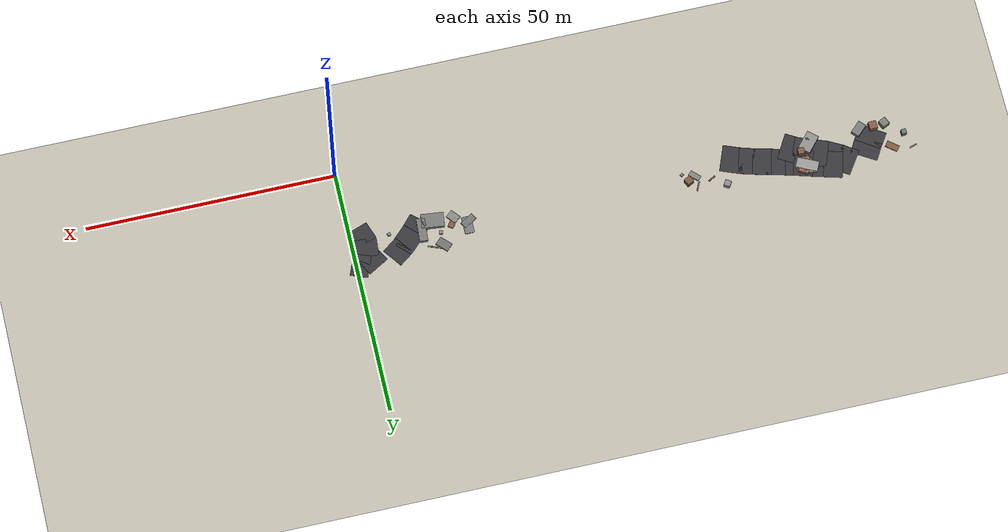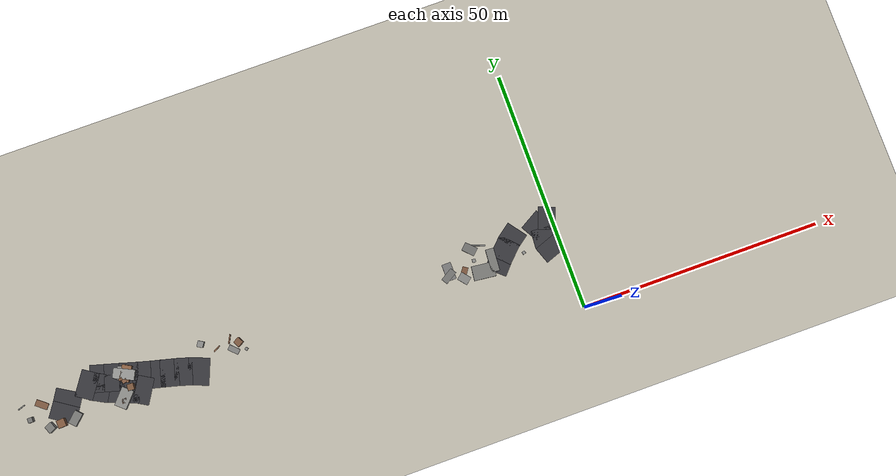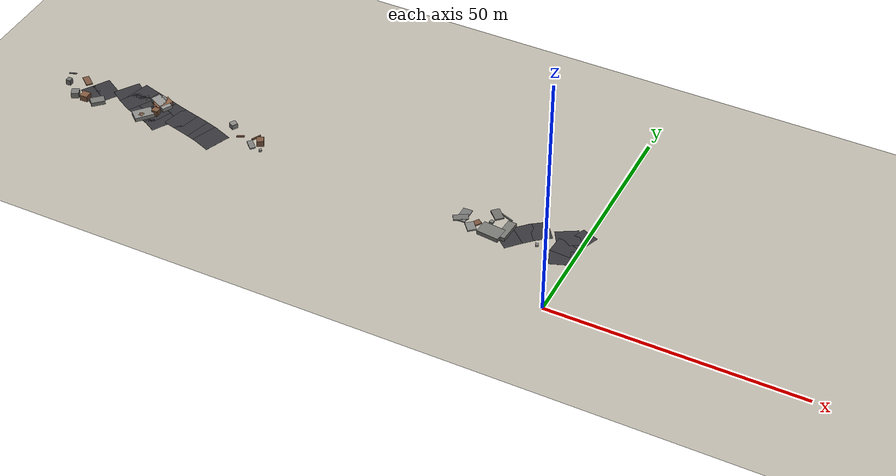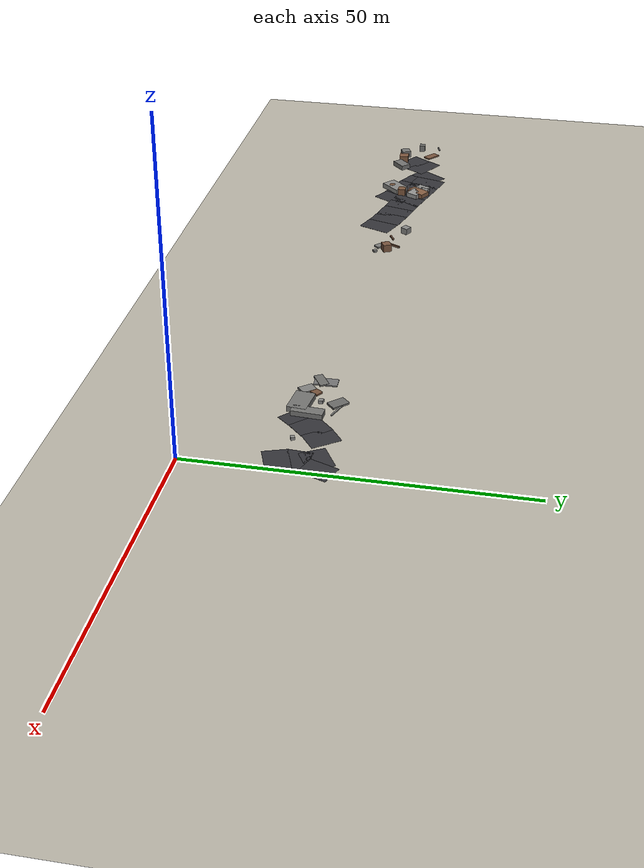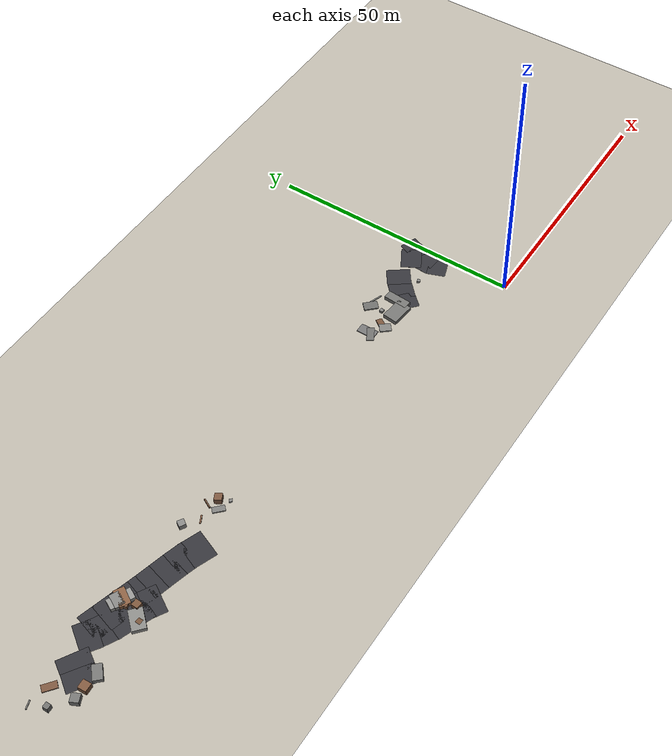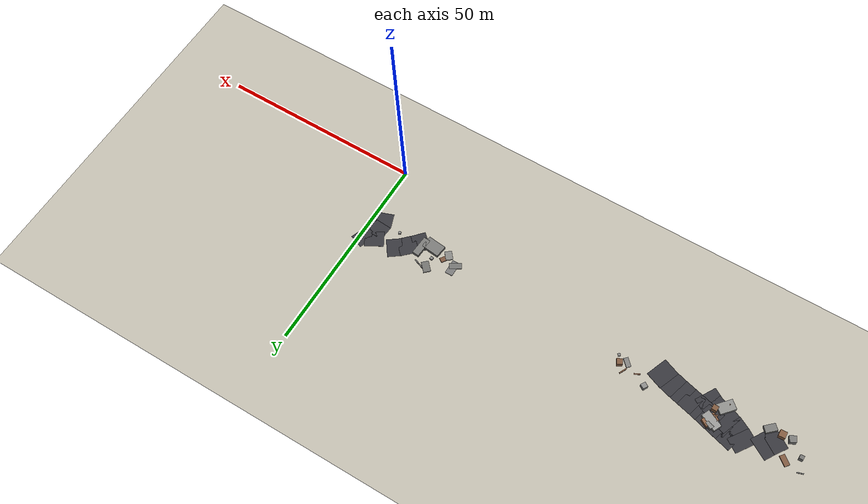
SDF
<sdf version="1.6">
 <world name="navitas_arena">
  <model name="ground_plane">
   <static>true</static>
   <link name="link">
    <collision name="collision">
     <geometry><plane><normal>0 0 1</normal><size>400 400</size></plane></geometry>
     <surface><friction><ode><mu>0.720</mu><mu2>0.720</mu2></ode></friction></surface>
    </collision>
    <visual name="visual">
     <cast_shadows>false</cast_shadows>
     <geometry><plane><normal>0 0 1</normal><size>400 400</size></plane></geometry>
     <material><ambient>0.720 0.700 0.650 1</ambient><diffuse>0.720 0.700 0.650 1</diffuse></material>
    </visual>
   </link>
  </model>
  <model name="road_kolay_1_17">
   <static>true</static>
   <pose>-105.048 15.414 0.040 0 0 0.982</pose>
   <link name="link">
    <collision name="col"><geometry><box><size>3.521 5.520 0.020</size></box></geometry></collision>
    <visual name="vis">
     <geometry><box><size>3.521 5.520 0.020</size></box></geometry>
     <material><ambient>0.20 0.20 0.22 1</ambient><diffuse>0.20 0.20 0.22 1</diffuse></material>
    </visual>
   </link>
  </model>
  <model name="road_kolay_1_18">
   <static>true</static>
   <pose>-103.608 17.687 0.040 0 0 1.029</pose>
   <link name="link">
    <collision name="col"><geometry><box><size>3.662 5.520 0.020</size></box></geometry></collision>
    <visual name="vis">
     <geometry><box><size>3.662 5.520 0.020</size></box></geometry>
     <material><ambient>0.20 0.20 0.22 1</ambient><diffuse>0.20 0.20 0.22 1</diffuse></material>
    </visual>
   </link>
  </model>
  <model name="road_kolay_2_13">
   <static>true</static>
   <pose>-88.765 14.302 0.040 0 0 2.616</pose>
   <link name="link">
    <collision name="col"><geometry><box><size>3.342 5.520 0.020</size></box></geometry></collision>
    <visual name="vis">
     <geometry><box><size>3.342 5.520 0.020</size></box></geometry>
     <material><ambient>0.20 0.20 0.22 1</ambient><diffuse>0.20 0.20 0.22 1</diffuse></material>
    </visual>
   </link>
  </model>
  <model name="road_kolay_2_14">
   <static>true</static>
   <pose>-91.242 15.455 0.040 0 0 2.778</pose>
   <link name="link">
    <collision name="col"><geometry><box><size>3.939 5.520 0.020</size></box></geometry></collision>
    <visual name="vis">
     <geometry><box><size>3.939 5.520 0.020</size></box></geometry>
     <material><ambient>0.20 0.20 0.22 1</ambient><diffuse>0.20 0.20 0.22 1</diffuse></material>
    </visual>
   </link>
  </model>
  <model name="road_kolay_2_15">
   <static>true</static>
   <pose>-94.027 16.499 0.040 0 0 2.788</pose>
   <link name="link">
    <collision name="col"><geometry><box><size>3.811 5.520 0.020</size></box></geometry></collision>
    <visual name="vis">
     <geometry><box><size>3.811 5.520 0.020</size></box></geometry>
     <material><ambient>0.20 0.20 0.22 1</ambient><diffuse>0.20 0.20 0.22 1</diffuse></material>
    </visual>
   </link>
  </model>
  <model name="road_kolay_2_16">
   <static>true</static>
   <pose>-96.622 17.661 0.040 0 0 2.650</pose>
   <link name="link">
    <collision name="col"><geometry><box><size>3.689 5.520 0.020</size></box></geometry></collision>
    <visual name="vis">
     <geometry><box><size>3.689 5.520 0.020</size></box></geometry>
     <material><ambient>0.20 0.20 0.22 1</ambient><diffuse>0.20 0.20 0.22 1</diffuse></material>
    </visual>
   </link>
  </model>
  <model name="road_kolay_2_17">
   <static>true</static>
   <pose>-99.024 19.110 0.040 0 0 2.549</pose>
   <link name="link">
    <collision name="col"><geometry><box><size>3.727 5.520 0.020</size></box></geometry></collision>
    <visual name="vis">
     <geometry><box><size>3.727 5.520 0.020</size></box></geometry>
     <material><ambient>0.20 0.20 0.22 1</ambient><diffuse>0.20 0.20 0.22 1</diffuse></material>
    </visual>
   </link>
  </model>
  <model name="road_kolay_3_19">
   <static>true</static>
   <pose>-77.175 14.094 0.040 0 0 2.771</pose>
   <link name="link">
    <collision name="col"><geometry><box><size>4.369 5.520 0.020</size></box></geometry></collision>
    <visual name="vis">
     <geometry><box><size>4.369 5.520 0.020</size></box></geometry>
     <material><ambient>0.20 0.20 0.22 1</ambient><diffuse>0.20 0.20 0.22 1</diffuse></material>
    </visual>
   </link>
  </model>
  <model name="road_kolay_3_20">
   <static>true</static>
   <pose>-80.094 15.095 0.040 0 0 2.862</pose>
   <link name="link">
    <collision name="col"><geometry><box><size>3.609 5.520 0.020</size></box></geometry></collision>
    <visual name="vis">
     <geometry><box><size>3.609 5.520 0.020</size></box></geometry>
     <material><ambient>0.20 0.20 0.22 1</ambient><diffuse>0.20 0.20 0.22 1</diffuse></material>
    </visual>
   </link>
  </model>
  <model name="road_kolay_3_21">
   <static>true</static>
   <pose>-82.766 15.818 0.040 0 0 2.892</pose>
   <link name="link">
    <collision name="col"><geometry><box><size>3.727 5.520 0.020</size></box></geometry></collision>
    <visual name="vis">
     <geometry><box><size>3.727 5.520 0.020</size></box></geometry>
     <material><ambient>0.20 0.20 0.22 1</ambient><diffuse>0.20 0.20 0.22 1</diffuse></material>
    </visual>
   </link>
  </model>
  <model name="road_kolay_3_22">
   <static>true</static>
   <pose>-85.478 16.502 0.040 0 0 2.897</pose>
   <link name="link">
    <collision name="col"><geometry><box><size>3.666 5.520 0.020</size></box></geometry></collision>
    <visual name="vis">
     <geometry><box><size>3.666 5.520 0.020</size></box></geometry>
     <material><ambient>0.20 0.20 0.22 1</ambient><diffuse>0.20 0.20 0.22 1</diffuse></material>
    </visual>
   </link>
  </model>
  <model name="road_kolay_3_23">
   <static>true</static>
   <pose>-88.037 17.168 0.040 0 0 2.876</pose>
   <link name="link">
    <collision name="col"><geometry><box><size>3.425 5.520 0.020</size></box></geometry></collision>
    <visual name="vis">
     <geometry><box><size>3.425 5.520 0.020</size></box></geometry>
     <material><ambient>0.20 0.20 0.22 1</ambient><diffuse>0.20 0.20 0.22 1</diffuse></material>
    </visual>
   </link>
  </model>
  <model name="road_kolay_3_24">
   <static>true</static>
   <pose>-90.668 17.910 0.040 0 0 2.859</pose>
   <link name="link">
    <collision name="col"><geometry><box><size>3.842 5.520 0.020</size></box></geometry></collision>
    <visual name="vis">
     <geometry><box><size>3.842 5.520 0.020</size></box></geometry>
     <material><ambient>0.20 0.20 0.22 1</ambient><diffuse>0.20 0.20 0.22 1</diffuse></material>
    </visual>
   </link>
  </model>
  <model name="road_kolay_3_25">
   <static>true</static>
   <pose>-93.536 18.730 0.040 0 0 2.867</pose>
   <link name="link">
    <collision name="col"><geometry><box><size>3.925 5.520 0.020</size></box></geometry></collision>
    <visual name="vis">
     <geometry><box><size>3.925 5.520 0.020</size></box></geometry>
     <material><ambient>0.20 0.20 0.22 1</ambient><diffuse>0.20 0.20 0.22 1</diffuse></material>
    </visual>
   </link>
  </model>
  <model name="road_kolay_3_26">
   <static>true</static>
   <pose>-96.366 19.520 0.040 0 0 2.872</pose>
   <link name="link">
    <collision name="col"><geometry><box><size>3.751 5.520 0.020</size></box></geometry></collision>
    <visual name="vis">
     <geometry><box><size>3.751 5.520 0.020</size></box></geometry>
     <material><ambient>0.20 0.20 0.22 1</ambient><diffuse>0.20 0.20 0.22 1</diffuse></material>
    </visual>
   </link>
  </model>
  <model name="blk_kolay_1_1_0">
   <static>true</static>
   <pose>-103.043 13.564 0.425 0 0 0.758</pose>
   <link name="link">
    <collision name="col"><geometry><box><size>2.801 1.728 0.850</size></box></geometry></collision>
    <visual name="vis">
     <geometry><box><size>2.801 1.728 0.850</size></box></geometry>
     <material><ambient>0.45 0.45 0.44 1</ambient><diffuse>0.45 0.45 0.44 1</diffuse></material>
    </visual>
   </link>
  </model>
  <model name="blk_kolay_1_1_5">
   <static>true</static>
   <pose>-108.223 13.491 0.622 0 0 0.443</pose>
   <link name="link">
    <collision name="col"><geometry><box><size>1.565 1.565 1.244</size></box></geometry></collision>
    <visual name="vis">
     <geometry><box><size>1.565 1.565 1.244</size></box></geometry>
     <material><ambient>0.45 0.45 0.44 1</ambient><diffuse>0.45 0.45 0.44 1</diffuse></material>
    </visual>
   </link>
  </model>
  <model name="blk_kolay_1_1_7">
   <static>true</static>
   <pose>-105.905 13.578 0.614 0 0 1.635</pose>
   <link name="link">
    <collision name="col"><geometry><box><size>1.599 1.599 1.229</size></box></geometry></collision>
    <visual name="vis">
     <geometry><box><size>1.599 1.599 1.229</size></box></geometry>
     <material><ambient>0.49 0.34 0.24 1</ambient><diffuse>0.49 0.34 0.24 1</diffuse></material>
    </visual>
   </link>
  </model>
  <model name="blk_kolay_2_1_0">
   <static>true</static>
   <pose>-90.727 15.725 0.619 0 0 1.529</pose>
   <link name="link">
    <collision name="col"><geometry><box><size>1.282 1.282 1.238</size></box></geometry></collision>
    <visual name="vis">
     <geometry><box><size>1.282 1.282 1.238</size></box></geometry>
     <material><ambient>0.47 0.33 0.23 1</ambient><diffuse>0.47 0.33 0.23 1</diffuse></material>
    </visual>
   </link>
  </model>
  <model name="blk_kolay_2_1_1">
   <static>true</static>
   <pose>-91.306 18.652 0.425 0 0 2.698</pose>
   <link name="link">
    <collision name="col"><geometry><box><size>4.382 2.096 0.850</size></box></geometry></collision>
    <visual name="vis">
     <geometry><box><size>4.382 2.096 0.850</size></box></geometry>
     <material><ambient>0.57 0.57 0.56 1</ambient><diffuse>0.57 0.57 0.56 1</diffuse></material>
    </visual>
   </link>
  </model>
  <model name="blk_kolay_2_1_2">
   <static>true</static>
   <pose>-91.752 18.995 0.425 0 0 1.115</pose>
   <link name="link">
    <collision name="col"><geometry><box><size>2.670 1.789 0.850</size></box></geometry></collision>
    <visual name="vis">
     <geometry><box><size>2.670 1.789 0.850</size></box></geometry>
     <material><ambient>0.51 0.51 0.50 1</ambient><diffuse>0.51 0.51 0.50 1</diffuse></material>
    </visual>
   </link>
  </model>
  <model name="blk_kolay_2_1_3">
   <static>true</static>
   <pose>-92.786 13.579 0.425 0 0 1.564</pose>
   <link name="link">
    <collision name="col"><geometry><box><size>0.930 0.930 0.850</size></box></geometry></collision>
    <visual name="vis">
     <geometry><box><size>0.930 0.930 0.850</size></box></geometry>
     <material><ambient>0.45 0.32 0.23 1</ambient><diffuse>0.45 0.32 0.23 1</diffuse></material>
    </visual>
   </link>
  </model>
  <model name="blk_kolay_2_1_4">
   <static>true</static>
   <pose>-92.699 14.105 0.425 0 0 0.852</pose>
   <link name="link">
    <collision name="col"><geometry><box><size>3.923 2.502 0.850</size></box></geometry></collision>
    <visual name="vis">
     <geometry><box><size>3.923 2.502 0.850</size></box></geometry>
     <material><ambient>0.53 0.53 0.52 1</ambient><diffuse>0.53 0.53 0.52 1</diffuse></material>
    </visual>
   </link>
  </model>
  <model name="blk_kolay_2_1_6">
   <static>true</static>
   <pose>-91.630 17.432 0.425 0 0 1.855</pose>
   <link name="link">
    <collision name="col"><geometry><box><size>0.997 0.997 0.850</size></box></geometry></collision>
    <visual name="vis">
     <geometry><box><size>0.997 0.997 0.850</size></box></geometry>
     <material><ambient>0.50 0.35 0.25 1</ambient><diffuse>0.50 0.35 0.25 1</diffuse></material>
    </visual>
   </link>
  </model>
  <model name="blk_kolay_2_1_7">
   <static>true</static>
   <pose>-90.949 18.653 0.425 0 0 1.044</pose>
   <link name="link">
    <collision name="col"><geometry><box><size>3.314 2.000 0.850</size></box></geometry></collision>
    <visual name="vis">
     <geometry><box><size>3.314 2.000 0.850</size></box></geometry>
     <material><ambient>0.53 0.37 0.26 1</ambient><diffuse>0.53 0.37 0.26 1</diffuse></material>
    </visual>
   </link>
  </model>
  <model name="deb_kolay_6">
   <static>true</static>
   <pose>-69.136 15.835 0.136 0 0 2.368</pose>
   <link name="link">
    <collision name="col"><geometry><box><size>2.322 1.134 0.272</size></box></geometry></collision>
    <visual name="vis">
     <geometry><box><size>2.322 1.134 0.272</size></box></geometry>
     <material><ambient>0.48 0.48 0.47 1</ambient><diffuse>0.48 0.48 0.47 1</diffuse></material>
    </visual>
   </link>
  </model>
  <model name="deb_kolay_25">
   <static>true</static>
   <pose>-72.315 17.132 0.121 0 0 0.501</pose>
   <link name="link">
    <collision name="col"><geometry><box><size>1.537 0.264 0.242</size></box></geometry></collision>
    <visual name="vis">
     <geometry><box><size>1.537 0.264 0.242</size></box></geometry>
     <material><ambient>0.47 0.33 0.24 1</ambient><diffuse>0.47 0.33 0.24 1</diffuse></material>
    </visual>
   </link>
  </model>
  <model name="deb_kolay_30">
   <static>true</static>
   <pose>-67.667 16.906 0.642 0 0 0.488</pose>
   <link name="link">
    <collision name="col"><geometry><box><size>1.399 1.399 1.284</size></box></geometry></collision>
    <visual name="vis">
     <geometry><box><size>1.399 1.399 1.284</size></box></geometry>
     <material><ambient>0.47 0.33 0.24 1</ambient><diffuse>0.47 0.33 0.24 1</diffuse></material>
    </visual>
   </link>
  </model>
  <model name="deb_kolay_31">
   <static>true</static>
   <pose>-111.544 16.249 0.601 0 0 0.033</pose>
   <link name="link">
    <collision name="col"><geometry><box><size>0.986 0.986 1.201</size></box></geometry></collision>
    <visual name="vis">
     <geometry><box><size>0.986 0.986 1.201</size></box></geometry>
     <material><ambient>0.43 0.43 0.42 1</ambient><diffuse>0.43 0.43 0.42 1</diffuse></material>
    </visual>
   </link>
  </model>
  <model name="deb_kolay_44">
   <static>true</static>
   <pose>-69.293 18.113 0.166 0 0 1.104</pose>
   <link name="link">
    <collision name="col"><geometry><box><size>1.934 0.247 0.331</size></box></geometry></collision>
    <visual name="vis">
     <geometry><box><size>1.934 0.247 0.331</size></box></geometry>
     <material><ambient>0.45 0.32 0.23 1</ambient><diffuse>0.45 0.32 0.23 1</diffuse></material>
    </visual>
   </link>
  </model>
  <model name="deb_kolay_74">
   <static>true</static>
   <pose>-66.696 15.129 0.184 0 0 0.663</pose>
   <link name="link">
    <collision name="col"><geometry><box><size>0.579 0.579 0.367</size></box></geometry></collision>
    <visual name="vis">
     <geometry><box><size>0.579 0.579 0.367</size></box></geometry>
     <material><ambient>0.49 0.49 0.48 1</ambient><diffuse>0.49 0.49 0.48 1</diffuse></material>
    </visual>
   </link>
  </model>
  <model name="deb_kolay_103">
   <static>true</static>
   <pose>-74.991 19.077 0.535 0 0 1.034</pose>
   <link name="link">
    <collision name="col"><geometry><box><size>1.244 1.244 1.070</size></box></geometry></collision>
    <visual name="vis">
     <geometry><box><size>1.244 1.244 1.070</size></box></geometry>
     <material><ambient>0.52 0.52 0.51 1</ambient><diffuse>0.52 0.52 0.51 1</diffuse></material>
    </visual>
   </link>
  </model>
  <model name="deb_kolay_104">
   <static>true</static>
   <pose>-108.716 18.447 0.120 0 0 2.463</pose>
   <link name="link">
    <collision name="col"><geometry><box><size>2.603 1.294 0.240</size></box></geometry></collision>
    <visual name="vis">
     <geometry><box><size>2.603 1.294 0.240</size></box></geometry>
     <material><ambient>0.47 0.33 0.24 1</ambient><diffuse>0.47 0.33 0.24 1</diffuse></material>
    </visual>
   </link>
  </model>
  <model name="deb_kolay_130">
   <static>true</static>
   <pose>-112.741 19.275 0.086 0 0 0.321</pose>
   <link name="link">
    <collision name="col"><geometry><box><size>1.553 0.224 0.173</size></box></geometry></collision>
    <visual name="vis">
     <geometry><box><size>1.553 0.224 0.173</size></box></geometry>
     <material><ambient>0.44 0.44 0.43 1</ambient><diffuse>0.44 0.44 0.43 1</diffuse></material>
    </visual>
   </link>
  </model>
  <model name="road_orta_1_19">
   <static>true</static>
   <pose>-13.245 14.014 0.040 0 0 0.839</pose>
   <link name="link">
    <collision name="col"><geometry><box><size>3.626 4.600 0.020</size></box></geometry></collision>
    <visual name="vis">
     <geometry><box><size>3.626 4.600 0.020</size></box></geometry>
     <material><ambient>0.20 0.20 0.22 1</ambient><diffuse>0.20 0.20 0.22 1</diffuse></material>
    </visual>
   </link>
  </model>
  <model name="road_orta_1_20">
   <static>true</static>
   <pose>-11.082 16.264 0.040 0 0 0.779</pose>
   <link name="link">
    <collision name="col"><geometry><box><size>4.419 4.600 0.020</size></box></geometry></collision>
    <visual name="vis">
     <geometry><box><size>4.419 4.600 0.020</size></box></geometry>
     <material><ambient>0.20 0.20 0.22 1</ambient><diffuse>0.20 0.20 0.22 1</diffuse></material>
    </visual>
   </link>
  </model>
  <model name="road_orta_1_21">
   <static>true</static>
   <pose>-8.724 18.320 0.040 0 0 0.638</pose>
   <link name="link">
    <collision name="col"><geometry><box><size>3.652 4.600 0.020</size></box></geometry></collision>
    <visual name="vis">
     <geometry><box><size>3.652 4.600 0.020</size></box></geometry>
     <material><ambient>0.20 0.20 0.22 1</ambient><diffuse>0.20 0.20 0.22 1</diffuse></material>
    </visual>
   </link>
  </model>
  <model name="road_orta_2_15">
   <static>true</static>
   <pose>-2.344 13.427 0.040 0 0 1.921</pose>
   <link name="link">
    <collision name="col"><geometry><box><size>3.658 4.600 0.020</size></box></geometry></collision>
    <visual name="vis">
     <geometry><box><size>3.658 4.600 0.020</size></box></geometry>
     <material><ambient>0.20 0.20 0.22 1</ambient><diffuse>0.20 0.20 0.22 1</diffuse></material>
    </visual>
   </link>
  </model>
  <model name="road_orta_2_16">
   <static>true</static>
   <pose>-2.723 16.111 0.040 0 0 1.503</pose>
   <link name="link">
    <collision name="col"><geometry><box><size>3.684 4.600 0.020</size></box></geometry></collision>
    <visual name="vis">
     <geometry><box><size>3.684 4.600 0.020</size></box></geometry>
     <material><ambient>0.20 0.20 0.22 1</ambient><diffuse>0.20 0.20 0.22 1</diffuse></material>
    </visual>
   </link>
  </model>
  <model name="road_orta_2_17">
   <static>true</static>
   <pose>-3.389 18.815 0.040 0 0 2.095</pose>
   <link name="link">
    <collision name="col"><geometry><box><size>3.937 4.600 0.020</size></box></geometry></collision>
    <visual name="vis">
     <geometry><box><size>3.937 4.600 0.020</size></box></geometry>
     <material><ambient>0.20 0.20 0.22 1</ambient><diffuse>0.20 0.20 0.22 1</diffuse></material>
    </visual>
   </link>
  </model>
  <model name="road_orta_3_22">
   <static>true</static>
   <pose>-0.913 19.514 0.040 0 0 2.777</pose>
   <link name="link">
    <collision name="col"><geometry><box><size>3.556 4.600 0.020</size></box></geometry></collision>
    <visual name="vis">
     <geometry><box><size>3.556 4.600 0.020</size></box></geometry>
     <material><ambient>0.20 0.20 0.22 1</ambient><diffuse>0.20 0.20 0.22 1</diffuse></material>
    </visual>
   </link>
  </model>
  <model name="blk_orta_1_2_2">
   <static>true</static>
   <pose>-14.213 15.136 0.425 0 0 1.504</pose>
   <link name="link">
    <collision name="col"><geometry><box><size>4.719 1.686 0.850</size></box></geometry></collision>
    <visual name="vis">
     <geometry><box><size>4.719 1.686 0.850</size></box></geometry>
     <material><ambient>0.45 0.45 0.44 1</ambient><diffuse>0.45 0.45 0.44 1</diffuse></material>
    </visual>
   </link>
  </model>
  <model name="blk_orta_1_2_4">
   <static>true</static>
   <pose>-16.654 13.640 0.425 0 0 3.031</pose>
   <link name="link">
    <collision name="col"><geometry><box><size>4.530 2.935 0.850</size></box></geometry></collision>
    <visual name="vis">
     <geometry><box><size>4.530 2.935 0.850</size></box></geometry>
     <material><ambient>0.45 0.45 0.44 1</ambient><diffuse>0.45 0.45 0.44 1</diffuse></material>
    </visual>
   </link>
  </model>
  <model name="deb_orta_7">
   <static>true</static>
   <pose>-7.715 14.445 0.231 0 0 1.883</pose>
   <link name="link">
    <collision name="col"><geometry><box><size>0.602 0.602 0.461</size></box></geometry></collision>
    <visual name="vis">
     <geometry><box><size>0.602 0.602 0.461</size></box></geometry>
     <material><ambient>0.52 0.52 0.51 1</ambient><diffuse>0.52 0.52 0.51 1</diffuse></material>
    </visual>
   </link>
  </model>
  <model name="deb_orta_28">
   <static>true</static>
   <pose>-17.767 16.320 0.257 0 0 1.461</pose>
   <link name="link">
    <collision name="col"><geometry><box><size>0.693 0.693 0.514</size></box></geometry></collision>
    <visual name="vis">
     <geometry><box><size>0.693 0.693 0.514</size></box></geometry>
     <material><ambient>0.51 0.51 0.50 1</ambient><diffuse>0.51 0.51 0.50 1</diffuse></material>
    </visual>
   </link>
  </model>
  <model name="deb_orta_62">
   <static>true</static>
   <pose>-15.963 18.988 0.086 0 0 2.789</pose>
   <link name="link">
    <collision name="col"><geometry><box><size>2.971 0.243 0.171</size></box></geometry></collision>
    <visual name="vis">
     <geometry><box><size>2.971 0.243 0.171</size></box></geometry>
     <material><ambient>0.46 0.46 0.45 1</ambient><diffuse>0.46 0.46 0.45 1</diffuse></material>
    </visual>
   </link>
  </model>
  <model name="deb_orta_68">
   <static>true</static>
   <pose>-23.574 15.105 0.121 0 0 0.552</pose>
   <link name="link">
    <collision name="col"><geometry><box><size>2.922 1.402 0.242</size></box></geometry></collision>
    <visual name="vis">
     <geometry><box><size>2.922 1.402 0.242</size></box></geometry>
     <material><ambient>0.43 0.43 0.42 1</ambient><diffuse>0.43 0.43 0.42 1</diffuse></material>
    </visual>
   </link>
  </model>
  <model name="deb_orta_101">
   <static>true</static>
   <pose>-20.410 14.794 0.131 0 0 0.967</pose>
   <link name="link">
    <collision name="col"><geometry><box><size>2.177 1.185 0.261</size></box></geometry></collision>
    <visual name="vis">
     <geometry><box><size>2.177 1.185 0.261</size></box></geometry>
     <material><ambient>0.46 0.32 0.23 1</ambient><diffuse>0.46 0.32 0.23 1</diffuse></material>
    </visual>
   </link>
  </model>
  <model name="deb_orta_115">
   <static>true</static>
   <pose>-20.814 13.613 0.146 0 0 2.270</pose>
   <link name="link">
    <collision name="col"><geometry><box><size>2.228 1.707 0.292</size></box></geometry></collision>
    <visual name="vis">
     <geometry><box><size>2.228 1.707 0.292</size></box></geometry>
     <material><ambient>0.50 0.50 0.49 1</ambient><diffuse>0.50 0.50 0.49 1</diffuse></material>
    </visual>
   </link>
  </model>
  <model name="deb_orta_133">
   <static>true</static>
   <pose>-17.788 18.820 0.146 0 0 2.342</pose>
   <link name="link">
    <collision name="col"><geometry><box><size>2.744 1.763 0.292</size></box></geometry></collision>
    <visual name="vis">
     <geometry><box><size>2.744 1.763 0.292</size></box></geometry>
     <material><ambient>0.42 0.42 0.41 1</ambient><diffuse>0.42 0.42 0.41 1</diffuse></material>
    </visual>
   </link>
  </model>
  <model name="deb_orta_147">
   <static>true</static>
   <pose>-23.258 15.919 0.104 0 0 1.588</pose>
   <link name="link">
    <collision name="col"><geometry><box><size>3.539 1.878 0.208</size></box></geometry></collision>
    <visual name="vis">
     <geometry><box><size>3.539 1.878 0.208</size></box></geometry>
     <material><ambient>0.45 0.45 0.45 1</ambient><diffuse>0.45 0.45 0.45 1</diffuse></material>
    </visual>
   </link>
  </model>
 </world>
</sdf>
